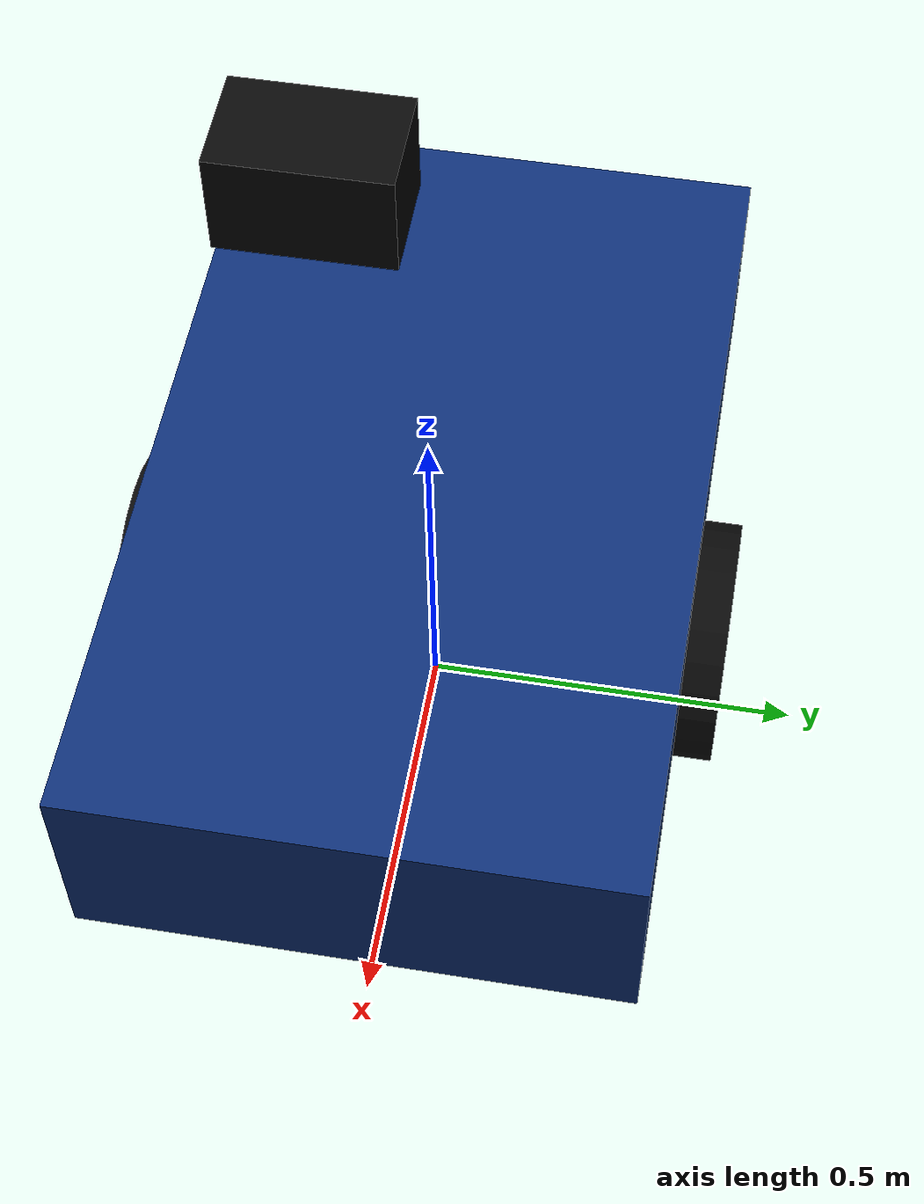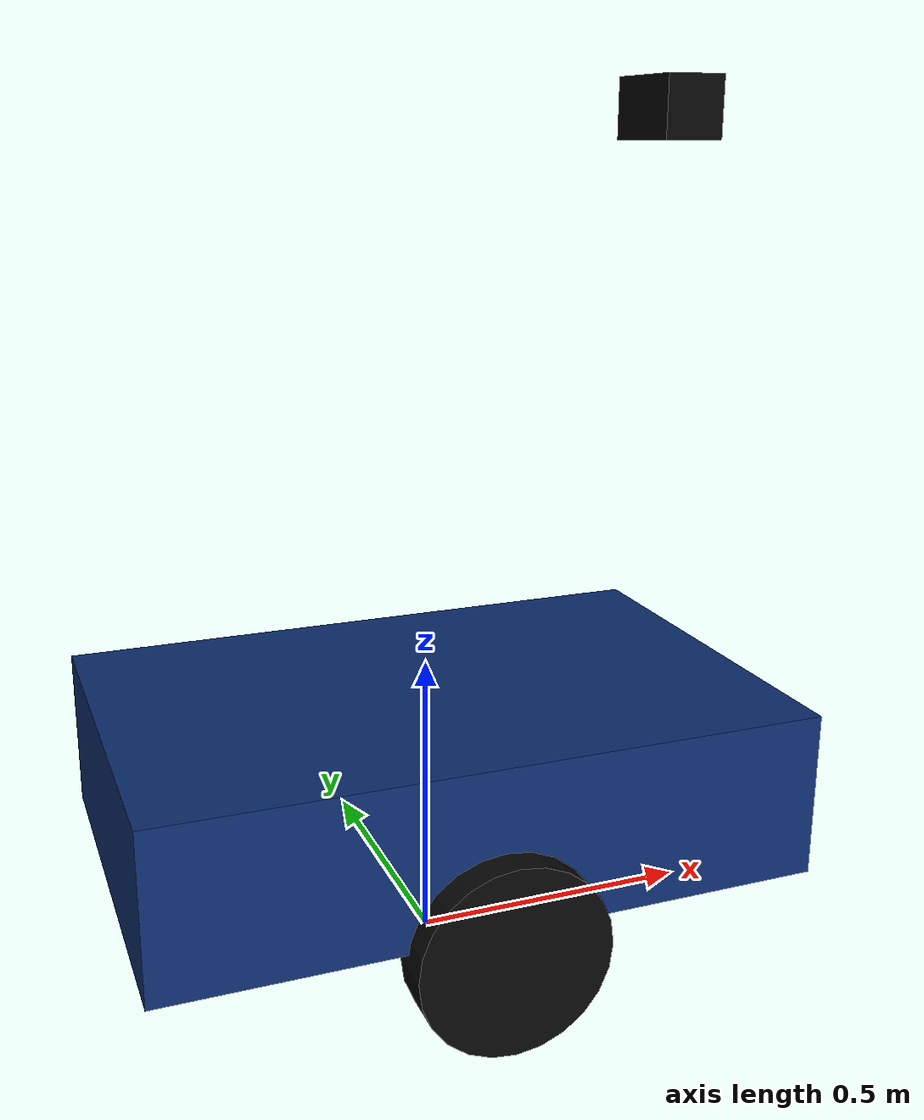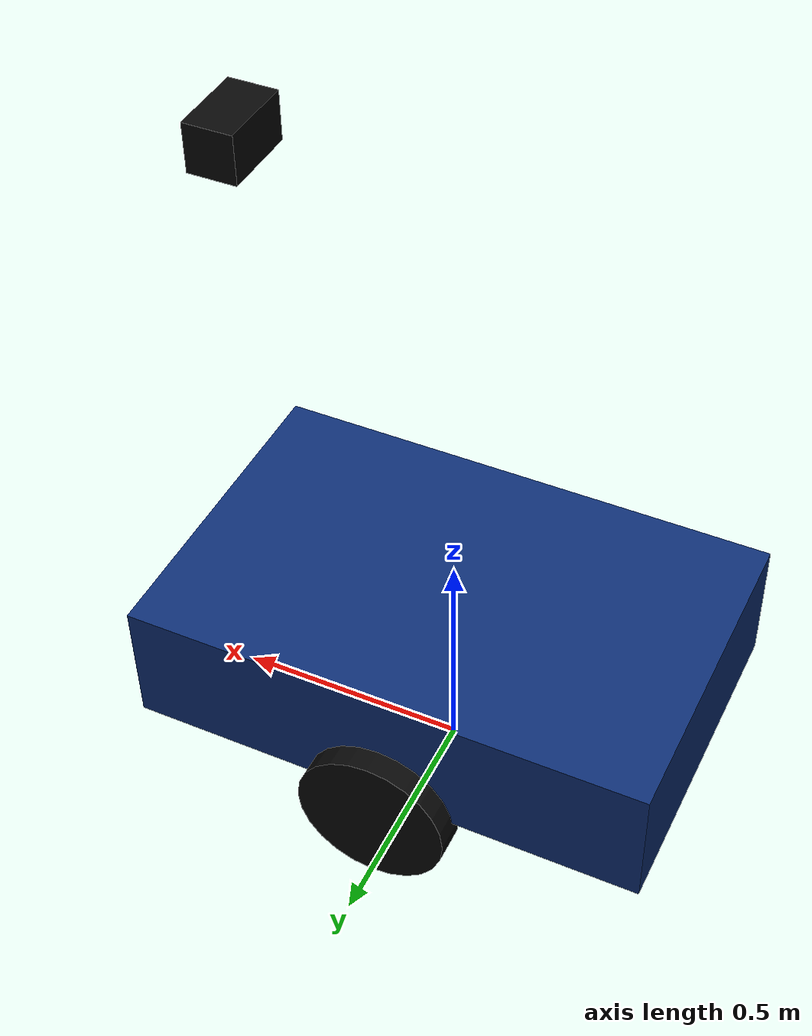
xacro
<?xml version="1.0"?>
<robot xmlns:xacro="http://www.ros.org/wiki/xacro" name="yolo_siaf_car">
  <xacro:property name="pi" value="3.141592653589793"/>
  <xacro:property name="wheel_radius" value="0.16"/>
  <xacro:property name="wheel_width" value="0.08"/>
  <xacro:property name="wheel_separation" value="0.72"/>

  <material name="body_blue"><color rgba="0.05 0.18 0.45 1"/></material>
  <material name="black"><color rgba="0.03 0.03 0.03 1"/></material>

  <link name="base_footprint"/>
  <joint name="base_footprint_joint" type="fixed">
    <parent link="base_footprint"/>
    <child link="base_link"/>
    <origin xyz="0 0 0.24"/>
  </joint>

  <link name="base_link">
    <inertial>
      <origin xyz="0 0 0.08"/>
      <mass value="30.0"/>
      <inertia ixx="1.6" ixy="0" ixz="0" iyy="3.2" iyz="0" izz="3.8"/>
    </inertial>
    <visual>
      <origin xyz="0 0 0.08"/>
      <geometry><box size="1.10 0.70 0.28"/></geometry>
      <material name="body_blue"/>
    </visual>
    <collision>
      <origin xyz="0 0 0.08"/>
      <geometry><box size="1.10 0.70 0.28"/></geometry>
    </collision>
  </link>

  <xacro:macro name="drive_wheel" params="side y">
    <link name="${side}_wheel_link">
      <inertial>
        <mass value="1.2"/>
        <inertia ixx="0.009" ixy="0" ixz="0" iyy="0.016" iyz="0" izz="0.009"/>
      </inertial>
      <visual>
        <origin rpy="${pi/2} 0 0"/>
        <geometry><cylinder radius="${wheel_radius}" length="${wheel_width}"/></geometry>
        <material name="black"/>
      </visual>
      <collision>
        <origin rpy="${pi/2} 0 0"/>
        <geometry><cylinder radius="${wheel_radius}" length="${wheel_width}"/></geometry>
      </collision>
    </link>
    <joint name="${side}_wheel_joint" type="continuous">
      <parent link="base_link"/>
      <child link="${side}_wheel_link"/>
      <origin xyz="0 ${y} -0.08"/>
      <axis xyz="0 1 0"/>
      <limit effort="40" velocity="30"/>
      <dynamics damping="0.05" friction="0.02"/>
    </joint>
  </xacro:macro>
  <xacro:drive_wheel side="left" y="${wheel_separation/2}"/>
  <xacro:drive_wheel side="right" y="${-wheel_separation/2}"/>

  <link name="rear_caster_link">
    <inertial><mass value="0.2"/><inertia ixx="0.001" ixy="0" ixz="0" iyy="0.001" iyz="0" izz="0.001"/></inertial>
    <visual><geometry><sphere radius="0.07"/></geometry><material name="black"/></visual>
    <collision><geometry><sphere radius="0.07"/></geometry></collision>
  </link>
  <joint name="rear_caster_joint" type="fixed">
    <parent link="base_link"/><child link="rear_caster_link"/>
    <origin xyz="-0.43 0 -0.17"/>
  </joint>

  <!-- Both optical sensors are co-located to provide registered pixels. -->
  <link name="rgb_camera_link">
    <inertial><mass value="0.1"/><inertia ixx="0.001" ixy="0" ixz="0" iyy="0.001" iyz="0" izz="0.001"/></inertial>
    <visual><geometry><box size="0.10 0.16 0.10"/></geometry><material name="black"/></visual>
  </link>
  <joint name="rgb_camera_joint" type="fixed">
    <parent link="base_link"/><child link="rgb_camera_link"/>
    <origin xyz="0.42 0 1.16" rpy="0 0 0"/>
  </joint>

  <link name="ir_camera_link">
    <inertial><mass value="0.1"/><inertia ixx="0.001" ixy="0" ixz="0" iyy="0.001" iyz="0" izz="0.001"/></inertial>
  </link>
  <joint name="ir_camera_joint" type="fixed">
    <parent link="rgb_camera_link"/><child link="ir_camera_link"/>
    <origin xyz="0 0 0" rpy="0 0 0"/>
  </joint>

  <gazebo reference="left_wheel_link"><mu1>1.2</mu1><mu2>1.2</mu2></gazebo>
  <gazebo reference="right_wheel_link"><mu1>1.2</mu1><mu2>1.2</mu2></gazebo>
  <gazebo reference="base_link"><material>Gazebo/Blue</material></gazebo>

  <gazebo>
    <plugin name="diff_drive" filename="libgazebo_ros_diff_drive.so">
      <ros><namespace>/</namespace></ros>
      <update_rate>50</update_rate>
      <left_joint>left_wheel_joint</left_joint>
      <right_joint>right_wheel_joint</right_joint>
      <wheel_separation>${wheel_separation}</wheel_separation>
      <wheel_diameter>${2*wheel_radius}</wheel_diameter>
      <max_wheel_torque>40</max_wheel_torque>
      <max_wheel_acceleration>4.0</max_wheel_acceleration>
      <command_topic>cmd_vel</command_topic>
      <odometry_topic>odom</odometry_topic>
      <odometry_frame>odom</odometry_frame>
      <robot_base_frame>base_footprint</robot_base_frame>
      <publish_odom>true</publish_odom>
      <publish_odom_tf>true</publish_odom_tf>
      <publish_wheel_tf>true</publish_wheel_tf>
    </plugin>
  </gazebo>

  <gazebo reference="rgb_camera_link">
    <sensor name="rgb_camera" type="camera">
      <always_on>true</always_on><update_rate>20</update_rate>
      <camera>
        <horizontal_fov>1.0471976</horizontal_fov>
        <image><width>640</width><height>480</height><format>R8G8B8</format></image>
        <clip><near>0.10</near><far>100.0</far></clip>
        <noise><type>gaussian</type><mean>0.0</mean><stddev>0.008</stddev></noise>
      </camera>
      <plugin name="rgb_camera_plugin" filename="libgazebo_ros_camera.so">
        <ros><namespace>/sensors/rgb</namespace></ros>
        <camera_name>rgb</camera_name>
        <frame_name>rgb_camera_link</frame_name>
      </plugin>
    </sensor>
  </gazebo>

  <gazebo reference="ir_camera_link">
    <sensor name="ir_proxy_camera" type="camera">
      <always_on>true</always_on><update_rate>20</update_rate>
      <camera>
        <horizontal_fov>1.0471976</horizontal_fov>
        <image><width>640</width><height>480</height><format>L8</format></image>
        <clip><near>0.10</near><far>100.0</far></clip>
        <noise><type>gaussian</type><mean>0.0</mean><stddev>0.004</stddev></noise>
      </camera>
      <plugin name="ir_camera_plugin" filename="libgazebo_ros_camera.so">
        <ros><namespace>/sensors/ir</namespace></ros>
        <camera_name>ir</camera_name>
        <frame_name>ir_camera_link</frame_name>
      </plugin>
    </sensor>
  </gazebo>
</robot>
